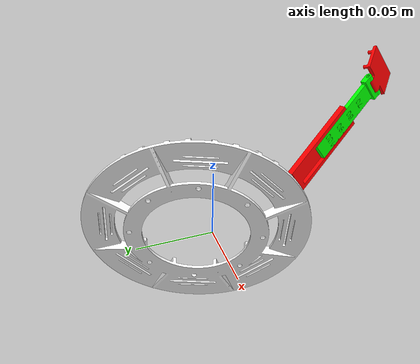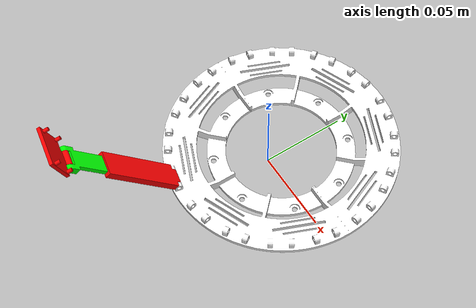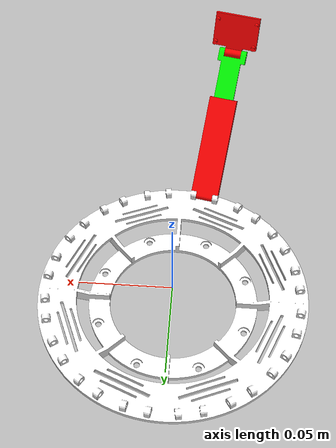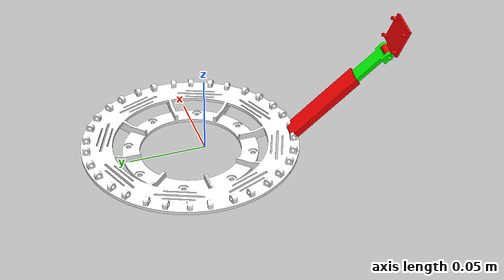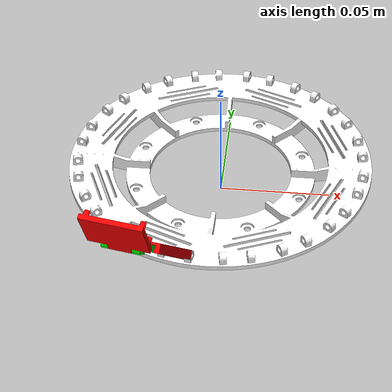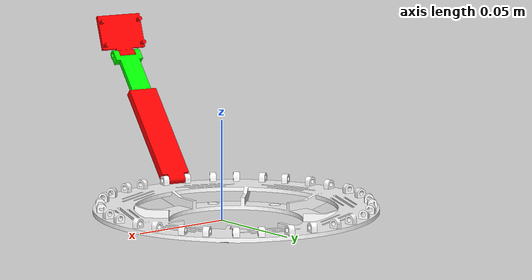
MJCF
<mujoco model="full-mount-new">
  <compiler angle="radian"/>
  <asset>
    <mesh name="base_link" file="base_link.stl" scale="0.001 0.001 0.001"/>
    <mesh name="camera-mount-slider-base.f3d_v1_1" file="camera-mount-slider-base.f3d_v1_1.stl" scale="0.001 0.001 0.001"/>
    <mesh name="camera-mount-slider_1" file="camera-mount-slider_1.stl" scale="0.001 0.001 0.001"/>
    <mesh name="camera-mount-cam-holder_1" file="camera-mount-cam-holder_1.stl" scale="0.001 0.001 0.001" />
  </asset>
  <worldbody>
    <geom type="mesh" rgba="1 1 1 1" mesh="base_link"/>
    <body name="camera-mount-slider-base.f3d_v1_1" pos="-0.018472 -0.05412 0.01025">
      <inertial pos="0.00103135 -0.0178871 0.0183645" quat="0.653281 0.270598 -0.270598 0.653281" mass="0.0129541" diaginertia="2.33333e-06 2.33333e-06 2.33333e-06"/>
      <joint name="Revolute 1" pos="0 0 0" axis="-0.9808 0.195014 0" limited="true" range="0 0.0001"/>
      <geom pos="0.018472 0.05412 -0.01025" type="mesh" rgba="1 0 0 1" mesh="camera-mount-slider-base.f3d_v1_1" />
      <body name="camera-mount-slider_1" pos="-0.004379 -0.056796 0.040499">
        <inertial pos="0.00131426 0.0183 -0.00260289" quat="0.92388 0.382683 0 0" mass="0.0131416" diaginertia="2.66667e-06 2.66667e-06 2.66667e-06"/>
        <joint name="Slider 2" pos="0 0 0" axis="-0.137896 -0.693531 0.707107" limited="true" type="slide" range="0.0 0.00001"/>
        <geom pos="0.022851 0.110916 -0.050749" type="mesh" rgba="0 1 0 1" mesh="camera-mount-slider_1"/>
        <body name="camera-mount-cam-holder_1" pos="-0.006815 0.00054 0.015268">
          <inertial pos="0.00342327 -0.00585647 0.00957566" quat="0.707107 0 0 0.707107" mass="0.00813056" diaginertia="3.33333e-07 3.33333e-07 3.33333e-07"/>
          <joint name="Revolute 3" pos="0 0 0" axis="0.9808 -0.195014 0" limited="true" range="0 0.00001"/>
          <geom pos="0.029666 0.110376 -0.066017" type="mesh" rgba="1 0 0 1" mesh="camera-mount-cam-holder_1"/>
        </body>
      </body>
    </body>
  </worldbody>
</mujoco>
